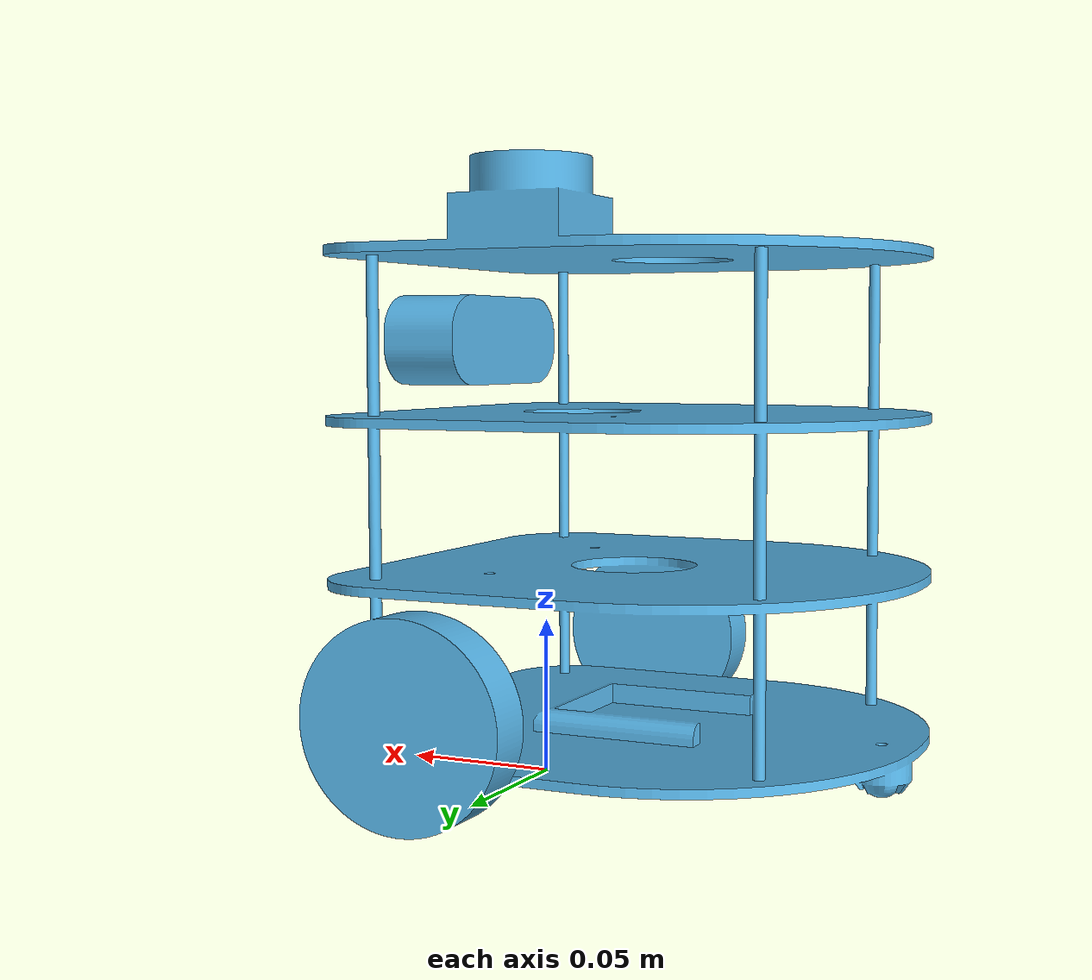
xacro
<?xml version="1.0"?>
<robot name="my_robot" xmlns:xacro="http://www.ros.org/wiki/xacro">

  <!-- Parameters -->
  <xacro:property name="base_length" value="0.18"/>
  <xacro:property name="base_width" value="0.16"/>
  <xacro:property name="base_height" value="0.18"/>

  <!-- Base footprint -->
  <link name="base_footprint"/>

  <!-- Base link -->
  <link name="base_link">

    <!-- Visual (what you see in RViz) -->
    <visual>
      <geometry>
        <mesh filename="package://description/meshes/my_turtlebot.stl"
              scale="1 1 1"/>
      </geometry>
      <origin xyz="0 0 ${base_height/2}" rpy="0 0 0"/>
    </visual>

    <!-- Collision (what Nav2 uses!) -->
    <collision>
      <geometry>
        <box size="${base_length} ${base_width} ${base_height}"/>
      </geometry>
       <origin xyz="0 0 ${base_height/2}" rpy="0 0 0"/>
    </collision>
  </link>

  <joint name="base_joint" type="fixed">
    <parent link="base_footprint"/>
    <child link="base_link"/>
  </joint>

  <!-- LiDAR -->
  <link name="laser_frame">
  </link>

  <joint name="laser_joint" type="fixed">
    <parent link="base_link"/>
    <child link="laser_frame"/>
    <origin xyz="0 0 ${base_height}" rpy="0 0 0"/>
  </joint>

</robot>
